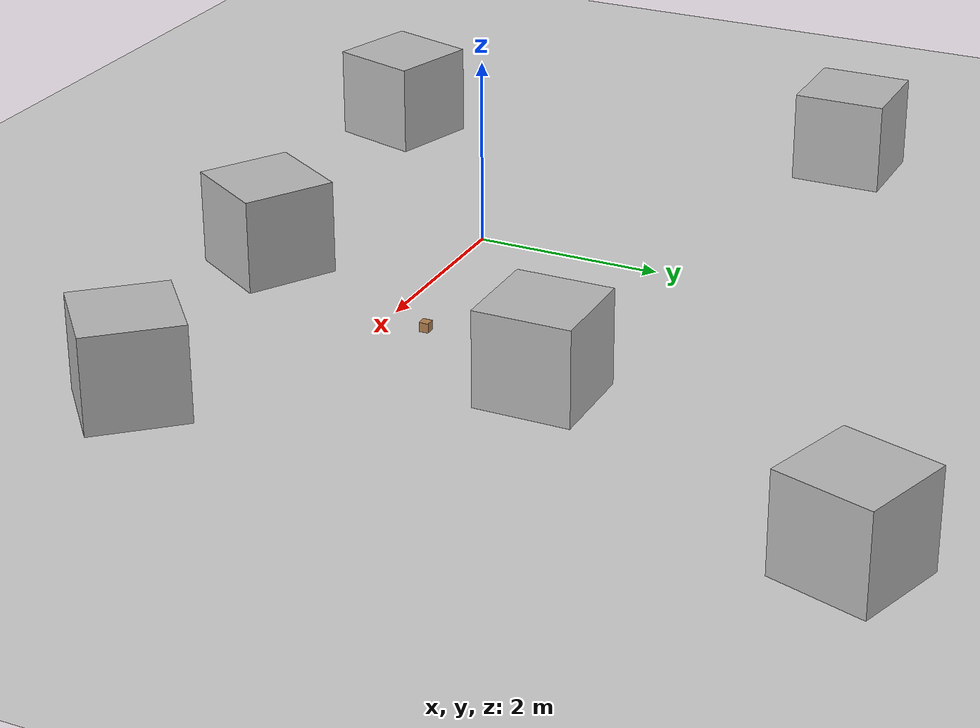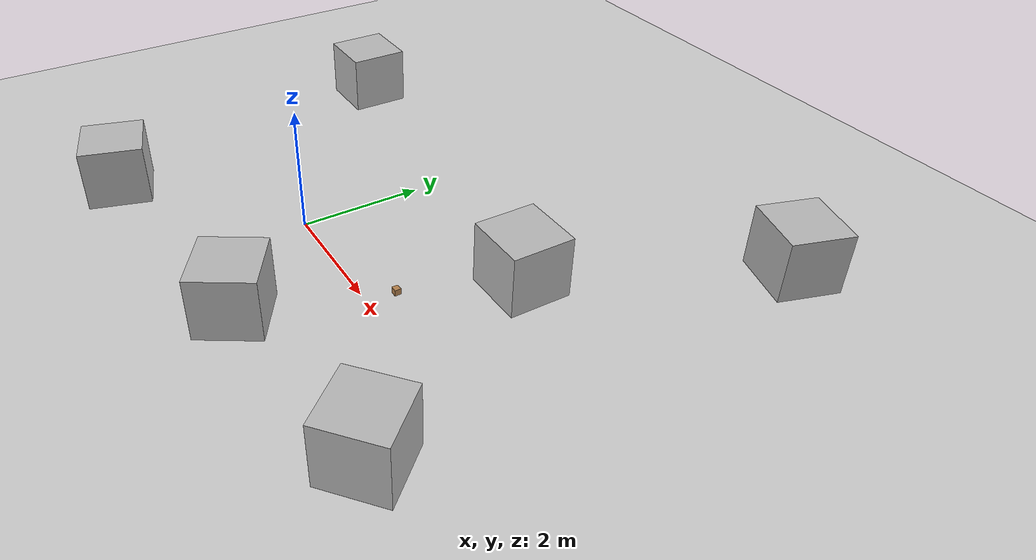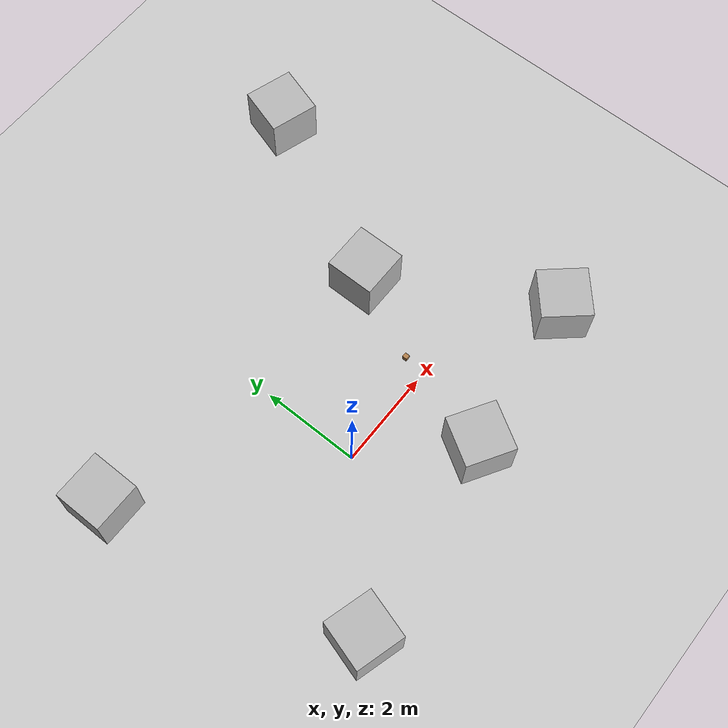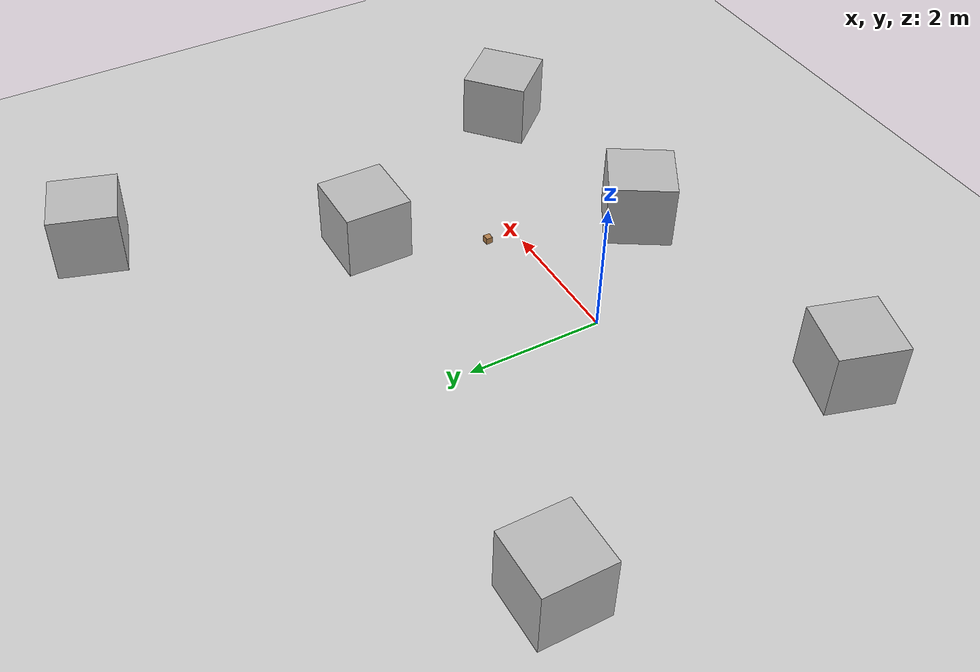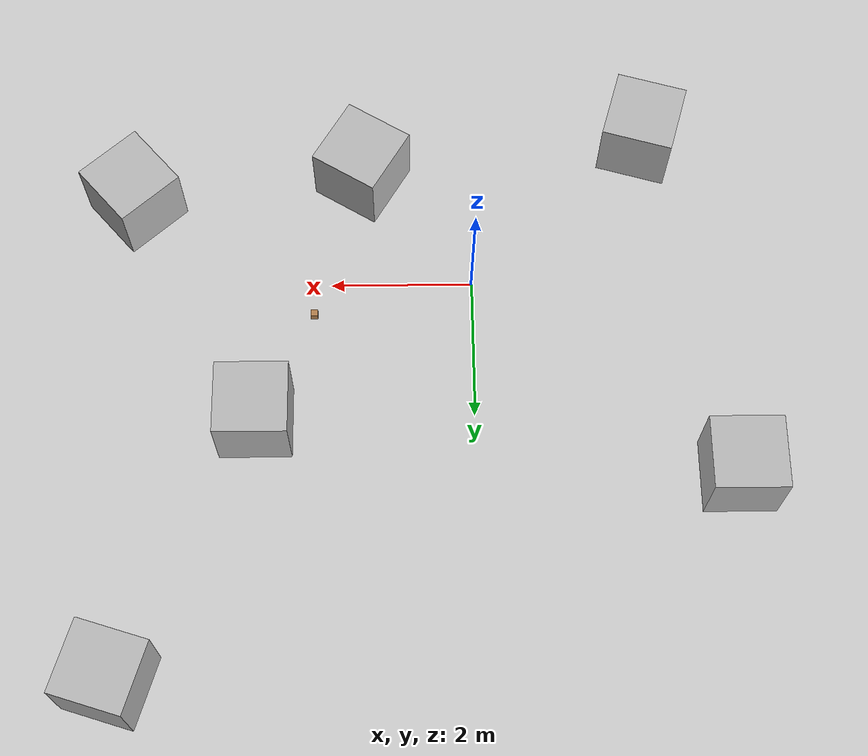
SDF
<sdf version="1.7">
 <world name="default">
  <light name="sun" type="directional">
   <pose>0 0 10 0 -0 0</pose>
   <diffuse>0.8 0.8 0.8 1</diffuse>
   <specular>0.2 0.2 0.2 1</specular>
   <attenuation>
    <range>1000</range>
    <constant>0.9</constant>
    <linear>0.01</linear>
    <quadratic>0.001</quadratic>
   </attenuation>
   <direction>-0.5 0.1 -0.9</direction>
   <spot><inner_angle>0</inner_angle><outer_angle>0</outer_angle><falloff>0</falloff></spot>
  </light>
  <model name="ground_plane">
   <static>1</static>
   <link name="link">
    <collision name="collision">
     <geometry><plane><normal>0 0 1</normal><size>100 100</size></plane></geometry>
     <surface><friction><ode><mu>100</mu><mu2>50</mu2></ode></friction></surface>
    </collision>
    <visual name="visual">
     <cast_shadows>0</cast_shadows>
     <geometry><plane><normal>0 0 1</normal><size>100 100</size></plane></geometry>
     <material>
      <script><uri>file://media/materials/scripts/gazebo.material</uri><name>Gazebo/Grey</name></script>
     </material>
    </visual>
   </link>
  </model>
  <gravity>0 0 -9.8</gravity>
  <magnetic_field>6e-06 2.3e-05 -4.2e-05</magnetic_field>
  <atmosphere type="adiabatic"/>
  <physics type="ode">
   <max_step_size>0.001</max_step_size>
   <real_time_factor>1</real_time_factor>
   <real_time_update_rate>1000</real_time_update_rate>
  </physics>
  <scene><ambient>0.4 0.4 0.4 1</ambient><background>0.7 0.7 0.7 1</background><shadows>1</shadows></scene>
  <audio><device>default</device></audio>
  <spherical_coordinates>
   <surface_model>EARTH_WGS84</surface_model>
   <latitude_deg>0</latitude_deg>
   <longitude_deg>0</longitude_deg>
   <elevation>0</elevation>
   <heading_deg>0</heading_deg>
  </spherical_coordinates>
  <model name="wood_cube_10cm">
   <link name="link">
    <pose>0 0 0.05 0 -0 0</pose>
    <inertial>
     <mass>0.5167</mass>
     <inertia>
      <ixx>0.000861167</ixx>
      <ixy>0</ixy>
      <ixz>0</ixz>
      <iyy>0.000861167</iyy>
      <iyz>0</iyz>
      <izz>0.000861167</izz>
     </inertia>
    </inertial>
    <collision name="collision">
     <geometry><box><size>0.1 0.1 0.1</size></box></geometry>
     <surface>
      <contact>
       <poissons_ratio>0.347</poissons_ratio>
       <elastic_modulus>8.8e+09</elastic_modulus>
       <ode><kp>100000</kp><kd>100</kd><max_vel>100</max_vel><min_depth>0.001</min_depth></ode>
      </contact>
      <friction>
       <torsional>
        <coefficient>1</coefficient>
        <use_patch_radius>0</use_patch_radius>
        <surface_radius>0.01</surface_radius>
       </torsional>
      </friction>
     </surface>
    </collision>
    <visual name="visual">
     <geometry><box><size>0.1 0.1 0.1</size></box></geometry>
     <material>
      <script><uri>file://media/materials/scripts/gazebo.material</uri><name>Gazebo/Wood</name></script>
     </material>
    </visual>
   </link>
   <pose>2.23935 0.460923 -0.001013 0 -0 0</pose>
  </model>
  <model name="test_box">
   <pose>3.01277 2.088 0.5 0 -0 0</pose>
   <link name="link">
    <collision name="collision"><geometry><box><size>1 1 1</size></box></geometry></collision>
    <visual name="visual"><geometry><box><size>1 1 1</size></box></geometry></visual>
    <inertial>
     <inertia><ixx>1</ixx><ixy>0</ixy><ixz>0</ixz><iyy>1</iyy><iyz>0</iyz><izz>1</izz></inertia>
     <mass>1</mass>
    </inertial>
   </link>
  </model>
  <model name="test_box_0">
   <pose>1.55939 -1.7196 0.5 0 0 -0.545733</pose>
   <link name="link">
    <collision name="collision"><geometry><box><size>1 1 1</size></box></geometry></collision>
    <visual name="visual"><geometry><box><size>1 1 1</size></box></geometry></visual>
    <inertial>
     <inertia><ixx>1</ixx><ixy>0</ixy><ixz>0</ixz><iyy>1</iyy><iyz>0</iyz><izz>1</izz></inertia>
     <mass>1</mass>
    </inertial>
   </link>
  </model>
  <model name="test_box_0_clone">
   <pose>4.82081 -1.28365 0.5 0 -0 0.719094</pose>
   <link name="link">
    <collision name="collision"><geometry><box><size>1 1 1</size></box></geometry></collision>
    <visual name="visual"><geometry><box><size>1 1 1</size></box></geometry></visual>
    <inertial>
     <inertia><ixx>1</ixx><ixy>0</ixy><ixz>0</ixz><iyy>1</iyy><iyz>0</iyz><izz>1</izz></inertia>
     <mass>1</mass>
    </inertial>
   </link>
  </model>
  <model name="test_box_0_clone_0">
   <pose>4.79229 5.67658 0.5 0 0 -0.305795</pose>
   <link name="link">
    <collision name="collision"><geometry><box><size>1 1 1</size></box></geometry></collision>
    <visual name="visual"><geometry><box><size>1 1 1</size></box></geometry></visual>
    <inertial>
     <inertia><ixx>1</ixx><ixy>0</ixy><ixz>0</ixz><iyy>1</iyy><iyz>0</iyz><izz>1</izz></inertia>
     <mass>1</mass>
    </inertial>
   </link>
  </model>
  <model name="test_box_0_clone_1">
   <pose>-3.55113 2.92786 0.5 0 -0 0</pose>
   <link name="link">
    <collision name="collision"><geometry><box><size>1 1 1</size></box></geometry></collision>
    <visual name="visual"><geometry><box><size>1 1 1</size></box></geometry></visual>
    <inertial>
     <inertia><ixx>1</ixx><ixy>0</ixy><ixz>0</ixz><iyy>1</iyy><iyz>0</iyz><izz>1</izz></inertia>
     <mass>1</mass>
    </inertial>
   </link>
  </model>
  <model name="test_box_0_clone_2">
   <pose>-2.49598 -2.25352 0.5 0 0 -0.285425</pose>
   <link name="link">
    <collision name="collision"><geometry><box><size>1 1 1</size></box></geometry></collision>
    <visual name="visual"><geometry><box><size>1 1 1</size></box></geometry></visual>
    <inertial>
     <inertia><ixx>1</ixx><ixy>0</ixy><ixz>0</ixz><iyy>1</iyy><iyz>0</iyz><izz>1</izz></inertia>
     <mass>1</mass>
    </inertial>
   </link>
  </model>
 </world>
</sdf>
